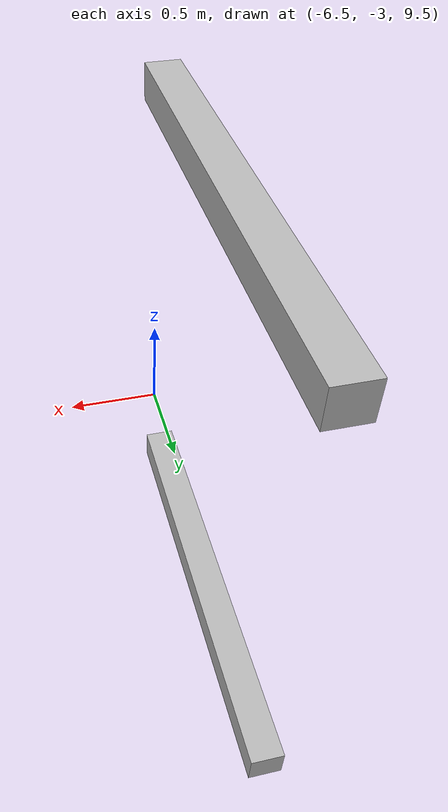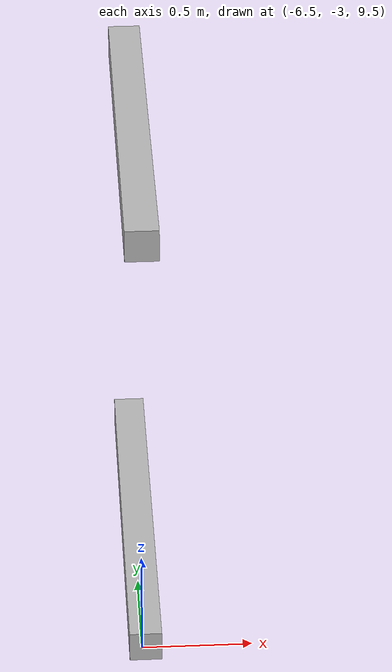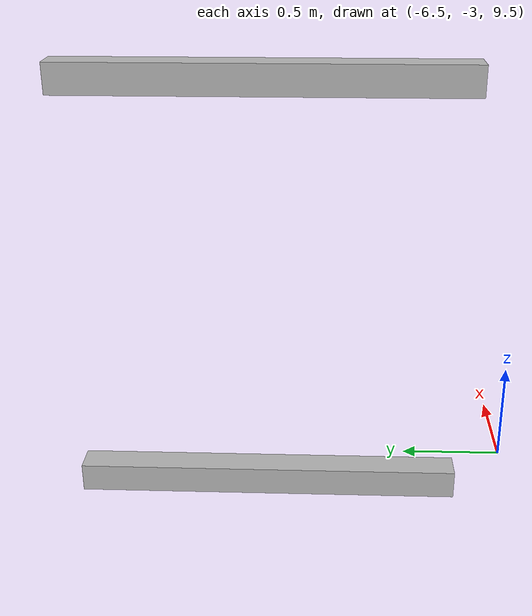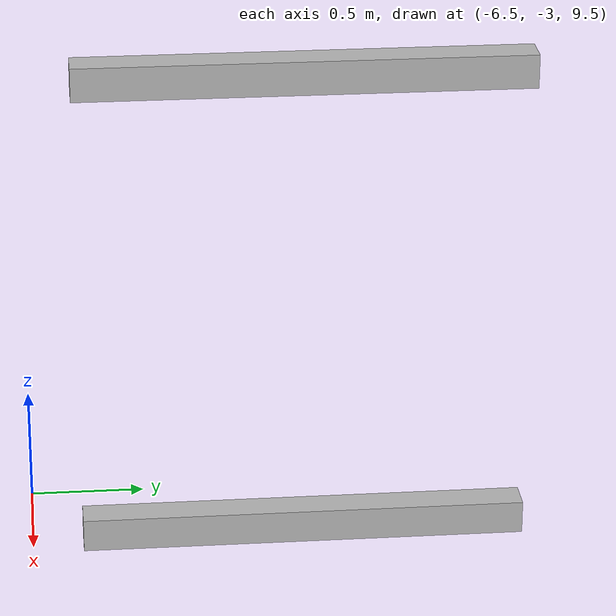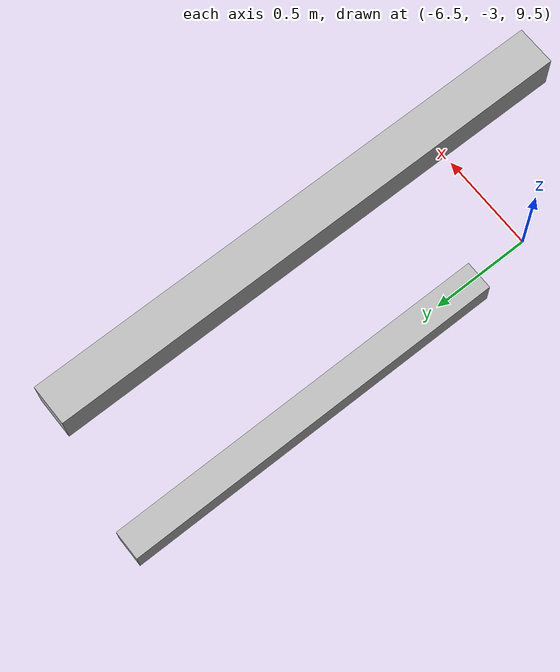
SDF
<sdf version="1.7">
 <world name="default">
  <model name="orthogonal_747_2.000.15_TS">
   <static>1</static>
   <link name="y_link_5_1_0">
    <inertial>
     <mass>1</mass>
     <inertia>
      <ixx>0.166667</ixx>
      <ixy>0</ixy>
      <ixz>0</ixz>
      <iyy>0.166667</iyy>
      <iyz>0</iyz>
      <izz>0.166667</izz>
     </inertia>
    </inertial>
    <pose>0 3.225 11.825 0 -0 0</pose>
    <visual name="visual_0">
     <laser_retro>4586</laser_retro>
     <geometry><box><size>0.15 1e-06 0.15</size></box></geometry>
     <material>
      <script><name>Gazebo/Grey</name><uri>file://media/materials/scripts/gazebo.material</uri></script>
      <shader type="pixel"><normal_map>__default__</normal_map></shader>
      <ambient>0.678 0.498 0.659 1</ambient>
      <diffuse>0.7 0.7 0.7 1</diffuse>
      <specular>0.01 0.01 0.01 1</specular>
      <emissive>0 0 0 1</emissive>
     </material>
     <pose>0 -1 0 0 -0 0</pose>
     <transparency>1</transparency>
    </visual>
    <visual name="visual_1">
     <laser_retro>4587</laser_retro>
     <geometry><box><size>0.15 1e-06 0.15</size></box></geometry>
     <material>
      <script><name>Gazebo/Grey</name><uri>file://media/materials/scripts/gazebo.material</uri></script>
      <shader type="pixel"><normal_map>__default__</normal_map></shader>
      <ambient>0.447 0.624 0.812 1</ambient>
      <diffuse>0.7 0.7 0.7 1</diffuse>
      <specular>0.01 0.01 0.01 1</specular>
      <emissive>0 0 0 1</emissive>
     </material>
     <pose>0 1 0 0 -0 0</pose>
     <transparency>1</transparency>
    </visual>
    <visual name="visual_2">
     <laser_retro>4588</laser_retro>
     <geometry><box><size>0.15 2 1e-06</size></box></geometry>
     <material>
      <script><name>Gazebo/Grey</name><uri>file://media/materials/scripts/gazebo.material</uri></script>
      <shader type="pixel"><normal_map>__default__</normal_map></shader>
      <ambient>0.988 0.686 0.243 1</ambient>
      <diffuse>0.7 0.7 0.7 1</diffuse>
      <specular>0.01 0.01 0.01 1</specular>
      <emissive>0 0 0 1</emissive>
     </material>
     <pose>0 0 -0.075 0 -0 0</pose>
     <transparency>1</transparency>
    </visual>
    <visual name="visual_3">
     <laser_retro>4589</laser_retro>
     <geometry><box><size>1e-06 2 0.15</size></box></geometry>
     <material>
      <script><name>Gazebo/Grey</name><uri>file://media/materials/scripts/gazebo.material</uri></script>
      <shader type="pixel"><normal_map>__default__</normal_map></shader>
      <ambient>0.988 0.914 0.31 1</ambient>
      <diffuse>0.7 0.7 0.7 1</diffuse>
      <specular>0.01 0.01 0.01 1</specular>
      <emissive>0 0 0 1</emissive>
     </material>
     <pose>0.075 0 0 0 -0 0</pose>
     <transparency>1</transparency>
    </visual>
    <visual name="visual_4">
     <laser_retro>4590</laser_retro>
     <geometry><box><size>0.15 2 1e-06</size></box></geometry>
     <material>
      <script><name>Gazebo/Grey</name><uri>file://media/materials/scripts/gazebo.material</uri></script>
      <shader type="pixel"><normal_map>__default__</normal_map></shader>
      <ambient>0.937 0.161 0.161 1</ambient>
      <diffuse>0.7 0.7 0.7 1</diffuse>
      <specular>0.01 0.01 0.01 1</specular>
      <emissive>0 0 0 1</emissive>
     </material>
     <pose>0 0 0.075 0 -0 0</pose>
     <transparency>1</transparency>
    </visual>
    <visual name="visual_5">
     <laser_retro>4591</laser_retro>
     <geometry><box><size>1e-06 2 0.15</size></box></geometry>
     <material>
      <script><name>Gazebo/Grey</name><uri>file://media/materials/scripts/gazebo.material</uri></script>
      <shader type="pixel"><normal_map>__default__</normal_map></shader>
      <ambient>0.541 0.886 0.204 1</ambient>
      <diffuse>0.7 0.7 0.7 1</diffuse>
      <specular>0.01 0.01 0.01 1</specular>
      <emissive>0 0 0 1</emissive>
     </material>
     <pose>-0.075 0 0 0 -0 0</pose>
     <transparency>1</transparency>
    </visual>
    <visual name="visual_texture">
     <geometry><box><size>0.149985 1.9998 0.149985</size></box></geometry>
     <material>
      <script>
       <uri>model://BASE_MODELS/simple_block_v2_textured/materials/scripts</uri>
       <uri>model://BASE_MODELS/simple_block_v2_textured/materials/textures</uri>
       <name>metal</name>
      </script>
     </material>
     <laser_retro>4592</laser_retro>
    </visual>
    <collision name="collision">
     <geometry><box><size>0.15 2 0.15</size></box></geometry>
     <surface>
      <friction>
       <ode><mu>1</mu><mu2>1</mu2><fdir1>0 0 0</fdir1><slip1>0</slip1><slip2>0</slip2></ode>
       <torsional>
        <coefficient>1</coefficient>
        <patch_radius>0</patch_radius>
        <surface_radius>0</surface_radius>
        <use_patch_radius>1</use_patch_radius>
        <ode><slip>0</slip></ode>
       </torsional>
      </friction>
      <bounce><restitution_coefficient>0</restitution_coefficient><threshold>1e+06</threshold></bounce>
      <contact>
       <collide_without_contact>0</collide_without_contact>
       <collide_without_contact_bitmask>1</collide_without_contact_bitmask>
       <collide_bitmask>1</collide_bitmask>
       <ode>
        <soft_cfm>0</soft_cfm>
        <soft_erp>0.2</soft_erp>
        <kp>1e+13</kp>
        <kd>1</kd>
        <max_vel>0.01</max_vel>
        <min_depth>0</min_depth>
       </ode>
       <bullet>
        <split_impulse>1</split_impulse>
        <split_impulse_penetration_threshold>-0.01</split_impulse_penetration_threshold>
        <soft_cfm>0</soft_cfm>
        <soft_erp>0.2</soft_erp>
        <kp>1e+13</kp>
        <kd>1</kd>
       </bullet>
      </contact>
     </surface>
    </collision>
   </link>
   <link name="y_link_6_1_0">
    <inertial>
     <mass>1</mass>
     <inertia>
      <ixx>0.166667</ixx>
      <ixy>0</ixy>
      <ixz>0</ixz>
      <iyy>0.166667</iyy>
      <iyz>0</iyz>
      <izz>0.166667</izz>
     </inertia>
    </inertial>
    <pose>0 3.225 13.975 0 -0 0</pose>
    <visual name="visual_0">
     <laser_retro>5489</laser_retro>
     <geometry><box><size>0.15 1e-06 0.15</size></box></geometry>
     <material>
      <script><name>Gazebo/Grey</name><uri>file://media/materials/scripts/gazebo.material</uri></script>
      <shader type="pixel"><normal_map>__default__</normal_map></shader>
      <ambient>0.678 0.498 0.659 1</ambient>
      <diffuse>0.7 0.7 0.7 1</diffuse>
      <specular>0.01 0.01 0.01 1</specular>
      <emissive>0 0 0 1</emissive>
     </material>
     <pose>0 -1 0 0 -0 0</pose>
     <transparency>1</transparency>
    </visual>
    <visual name="visual_1">
     <laser_retro>5490</laser_retro>
     <geometry><box><size>0.15 1e-06 0.15</size></box></geometry>
     <material>
      <script><name>Gazebo/Grey</name><uri>file://media/materials/scripts/gazebo.material</uri></script>
      <shader type="pixel"><normal_map>__default__</normal_map></shader>
      <ambient>0.447 0.624 0.812 1</ambient>
      <diffuse>0.7 0.7 0.7 1</diffuse>
      <specular>0.01 0.01 0.01 1</specular>
      <emissive>0 0 0 1</emissive>
     </material>
     <pose>0 1 0 0 -0 0</pose>
     <transparency>1</transparency>
    </visual>
    <visual name="visual_2">
     <laser_retro>5491</laser_retro>
     <geometry><box><size>0.15 2 1e-06</size></box></geometry>
     <material>
      <script><name>Gazebo/Grey</name><uri>file://media/materials/scripts/gazebo.material</uri></script>
      <shader type="pixel"><normal_map>__default__</normal_map></shader>
      <ambient>0.988 0.686 0.243 1</ambient>
      <diffuse>0.7 0.7 0.7 1</diffuse>
      <specular>0.01 0.01 0.01 1</specular>
      <emissive>0 0 0 1</emissive>
     </material>
     <pose>0 0 -0.075 0 -0 0</pose>
     <transparency>1</transparency>
    </visual>
    <visual name="visual_3">
     <laser_retro>5492</laser_retro>
     <geometry><box><size>1e-06 2 0.15</size></box></geometry>
     <material>
      <script><name>Gazebo/Grey</name><uri>file://media/materials/scripts/gazebo.material</uri></script>
      <shader type="pixel"><normal_map>__default__</normal_map></shader>
      <ambient>0.988 0.914 0.31 1</ambient>
      <diffuse>0.7 0.7 0.7 1</diffuse>
      <specular>0.01 0.01 0.01 1</specular>
      <emissive>0 0 0 1</emissive>
     </material>
     <pose>0.075 0 0 0 -0 0</pose>
     <transparency>1</transparency>
    </visual>
    <visual name="visual_4">
     <laser_retro>5493</laser_retro>
     <geometry><box><size>0.15 2 1e-06</size></box></geometry>
     <material>
      <script><name>Gazebo/Grey</name><uri>file://media/materials/scripts/gazebo.material</uri></script>
      <shader type="pixel"><normal_map>__default__</normal_map></shader>
      <ambient>0.937 0.161 0.161 1</ambient>
      <diffuse>0.7 0.7 0.7 1</diffuse>
      <specular>0.01 0.01 0.01 1</specular>
      <emissive>0 0 0 1</emissive>
     </material>
     <pose>0 0 0.075 0 -0 0</pose>
     <transparency>1</transparency>
    </visual>
    <visual name="visual_5">
     <laser_retro>5494</laser_retro>
     <geometry><box><size>1e-06 2 0.15</size></box></geometry>
     <material>
      <script><name>Gazebo/Grey</name><uri>file://media/materials/scripts/gazebo.material</uri></script>
      <shader type="pixel"><normal_map>__default__</normal_map></shader>
      <ambient>0.541 0.886 0.204 1</ambient>
      <diffuse>0.7 0.7 0.7 1</diffuse>
      <specular>0.01 0.01 0.01 1</specular>
      <emissive>0 0 0 1</emissive>
     </material>
     <pose>-0.075 0 0 0 -0 0</pose>
     <transparency>1</transparency>
    </visual>
    <visual name="visual_texture">
     <geometry><box><size>0.149985 1.9998 0.149985</size></box></geometry>
     <material>
      <script>
       <uri>model://BASE_MODELS/simple_block_v2_textured/materials/scripts</uri>
       <uri>model://BASE_MODELS/simple_block_v2_textured/materials/textures</uri>
       <name>metal</name>
      </script>
     </material>
     <laser_retro>5495</laser_retro>
    </visual>
    <collision name="collision">
     <geometry><box><size>0.15 2 0.15</size></box></geometry>
     <surface>
      <friction>
       <ode><mu>1</mu><mu2>1</mu2><fdir1>0 0 0</fdir1><slip1>0</slip1><slip2>0</slip2></ode>
       <torsional>
        <coefficient>1</coefficient>
        <patch_radius>0</patch_radius>
        <surface_radius>0</surface_radius>
        <use_patch_radius>1</use_patch_radius>
        <ode><slip>0</slip></ode>
       </torsional>
      </friction>
      <bounce><restitution_coefficient>0</restitution_coefficient><threshold>1e+06</threshold></bounce>
      <contact>
       <collide_without_contact>0</collide_without_contact>
       <collide_without_contact_bitmask>1</collide_without_contact_bitmask>
       <collide_bitmask>1</collide_bitmask>
       <ode>
        <soft_cfm>0</soft_cfm>
        <soft_erp>0.2</soft_erp>
        <kp>1e+13</kp>
        <kd>1</kd>
        <max_vel>0.01</max_vel>
        <min_depth>0</min_depth>
       </ode>
       <bullet>
        <split_impulse>1</split_impulse>
        <split_impulse_penetration_threshold>-0.01</split_impulse_penetration_threshold>
        <soft_cfm>0</soft_cfm>
        <soft_erp>0.2</soft_erp>
        <kp>1e+13</kp>
        <kd>1</kd>
       </bullet>
      </contact>
     </surface>
    </collision>
   </link>
   <pose>-6.47624 -5 -2.5 0 -0 0</pose>
  </model>
 </world>
</sdf>
